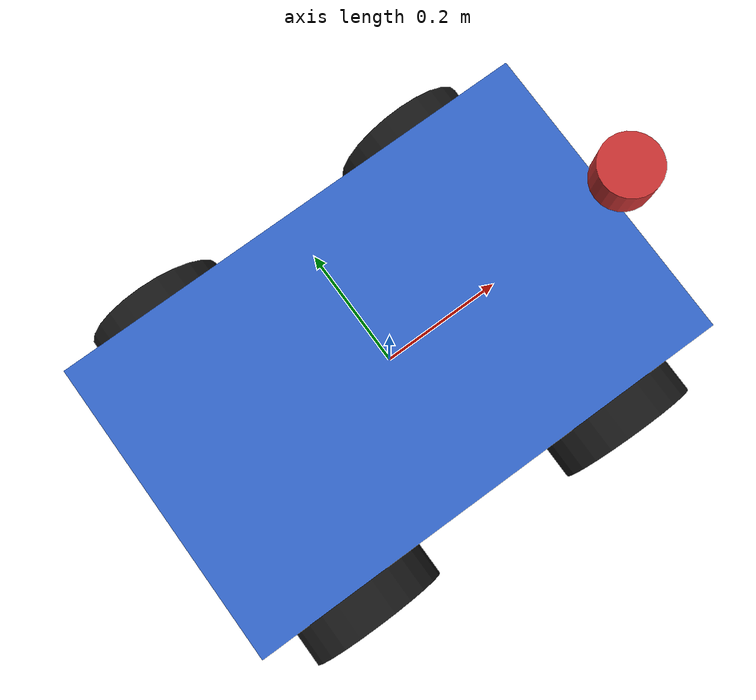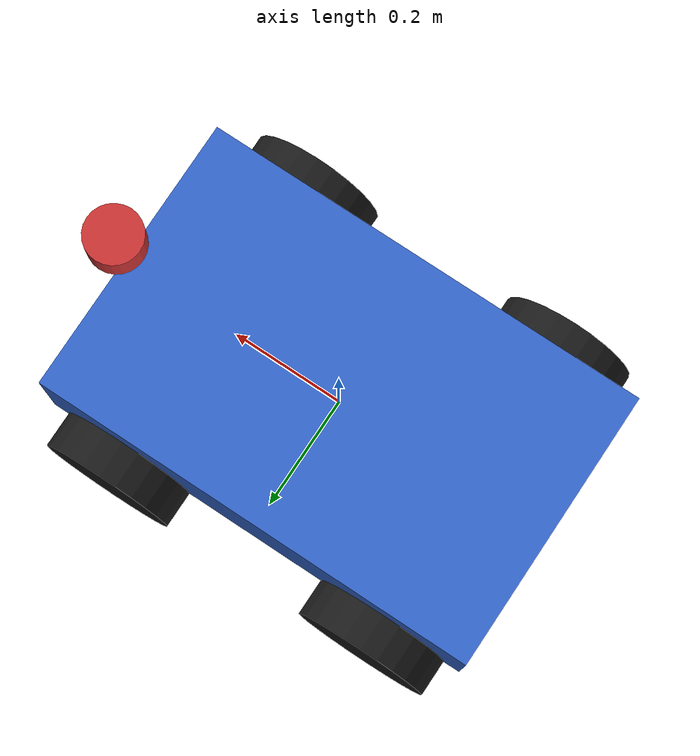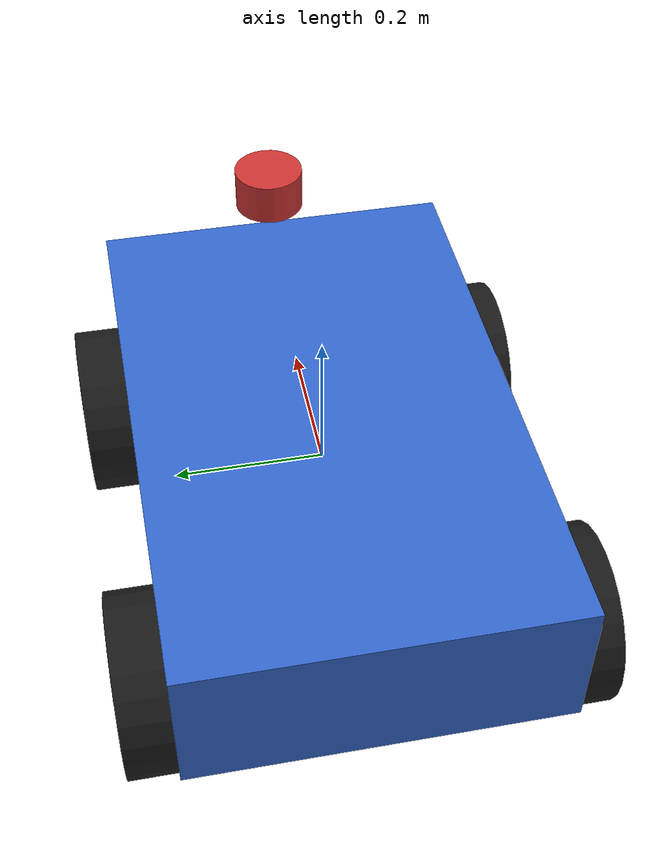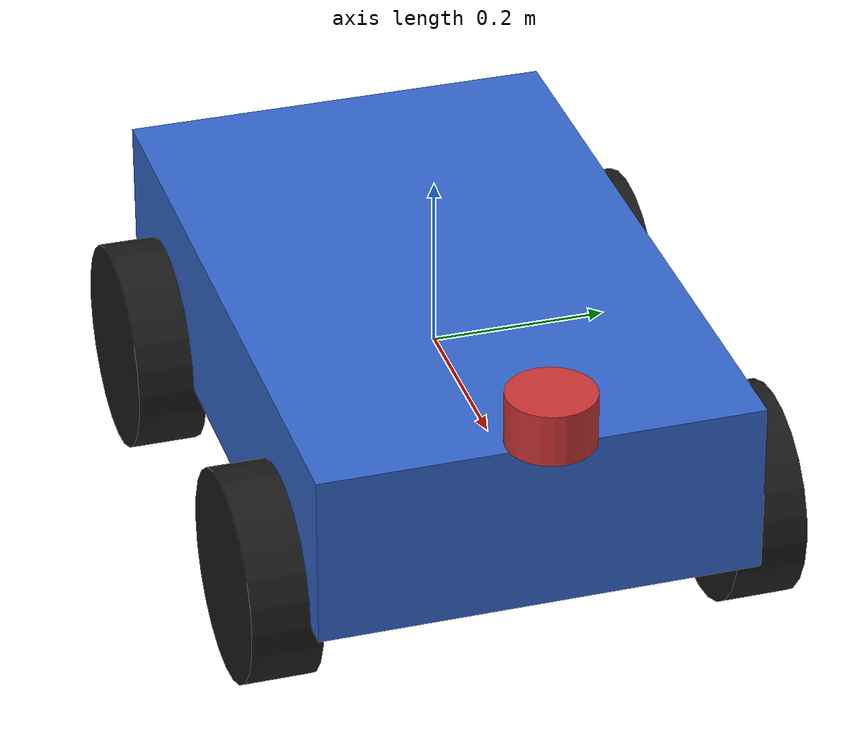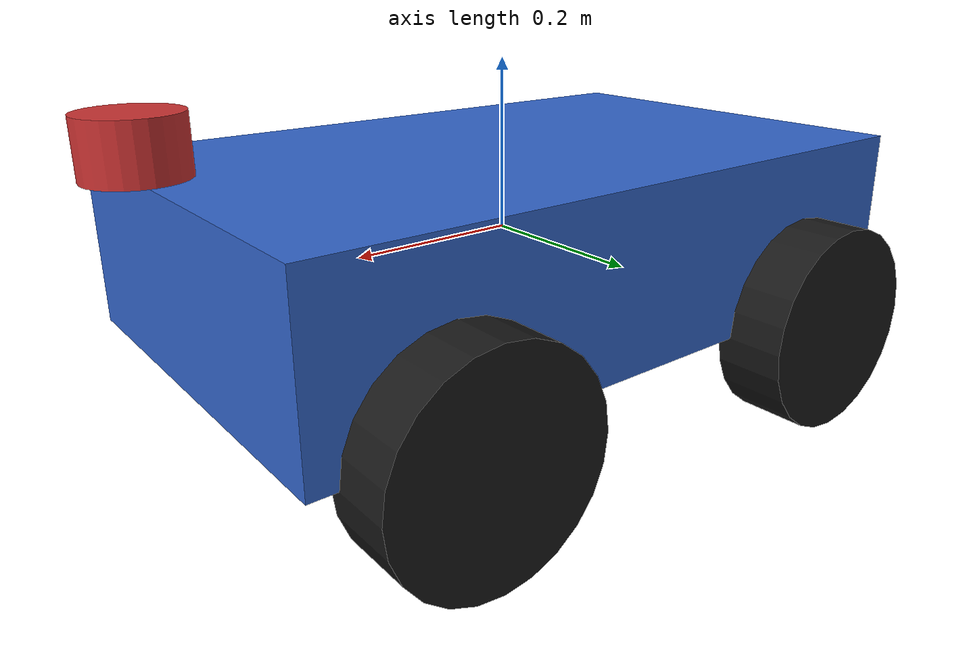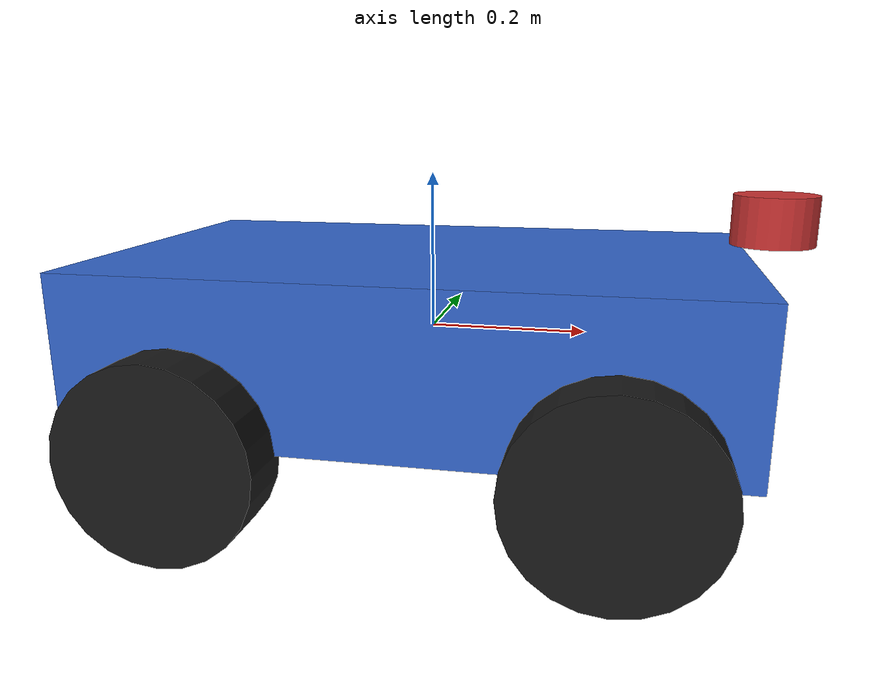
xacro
<?xml version="1.0"?>
<robot xmlns:xacro="http://www.ros.org/wiki/xacro" name="cd2_car">

  <!-- ======================== THAM SỐ ======================== -->
  <xacro:property name="chassis_length" value="0.8"/>
  <xacro:property name="chassis_width" value="0.5"/>
  <xacro:property name="chassis_height" value="0.2"/>
  <xacro:property name="chassis_mass" value="10.0"/>

  <xacro:property name="wheel_radius" value="0.12"/>
  <xacro:property name="wheel_width" value="0.08"/>
  <xacro:property name="wheel_mass" value="1.0"/>

  <xacro:property name="wheel_separation" value="0.55"/>
  <xacro:property name="wheelbase" value="0.5"/>

  <!-- ======================== MATERIALS ======================== -->
  <material name="blue">
    <color rgba="0.2 0.4 0.8 1.0"/>
  </material>
  <material name="black">
    <color rgba="0.1 0.1 0.1 1.0"/>
  </material>
  <material name="red">
    <color rgba="0.8 0.2 0.2 1.0"/>
  </material>

  <!-- ======================== BASE LINK ======================== -->
  <link name="base_link">
    <visual>
      <geometry>
        <box size="${chassis_length} ${chassis_width} ${chassis_height}"/>
      </geometry>
      <material name="blue"/>
    </visual>
    <collision>
      <geometry>
        <box size="${chassis_length} ${chassis_width} ${chassis_height}"/>
      </geometry>
    </collision>
    <inertial>
      <mass value="${chassis_mass}"/>
      <inertia ixx="${chassis_mass*(chassis_width*chassis_width + chassis_height*chassis_height)/12}"
               ixy="0" ixz="0"
               iyy="${chassis_mass*(chassis_length*chassis_length + chassis_height*chassis_height)/12}"
               iyz="0"
               izz="${chassis_mass*(chassis_length*chassis_length + chassis_width*chassis_width)/12}"/>
    </inertial>
  </link>

  <!-- ======================== MACRO BÁNH XE ======================== -->
  <xacro:macro name="wheel" params="name x_offset y_offset">
    <link name="${name}_wheel">
      <visual>
        <geometry>
          <cylinder radius="${wheel_radius}" length="${wheel_width}"/>
        </geometry>
        <material name="black"/>
      </visual>
      <collision>
        <geometry>
          <cylinder radius="${wheel_radius}" length="${wheel_width}"/>
        </geometry>
      </collision>
      <inertial>
        <mass value="${wheel_mass}"/>
        <inertia ixx="${wheel_mass*(3*wheel_radius*wheel_radius + wheel_width*wheel_width)/12}"
                 ixy="0" ixz="0"
                 iyy="${wheel_mass*(3*wheel_radius*wheel_radius + wheel_width*wheel_width)/12}"
                 iyz="0"
                 izz="${wheel_mass*wheel_radius*wheel_radius/2}"/>
      </inertial>
    </link>

    <joint name="${name}_wheel_joint" type="continuous">
      <parent link="base_link"/>
      <child link="${name}_wheel"/>
      <origin xyz="${x_offset} ${y_offset} ${-chassis_height/2}" rpy="${-pi/2} 0 0"/>
      <axis xyz="0 0 1"/>
    </joint>
  </xacro:macro>

  <!-- ======================== 4 BÁNH XE ======================== -->
  <!-- Bánh sau trái (driven) -->
  <xacro:wheel name="rear_left" x_offset="${-wheelbase/2}" y_offset="${wheel_separation/2}"/>
  <!-- Bánh sau phải (driven) -->
  <xacro:wheel name="rear_right" x_offset="${-wheelbase/2}" y_offset="${-wheel_separation/2}"/>
  <!-- Bánh trước trái (caster/passive) -->
  <xacro:wheel name="front_left" x_offset="${wheelbase/2}" y_offset="${wheel_separation/2}"/>
  <!-- Bánh trước phải (caster/passive) -->
  <xacro:wheel name="front_right" x_offset="${wheelbase/2}" y_offset="${-wheel_separation/2}"/>

  <!-- ======================== LIDAR LINK ======================== -->
  <link name="laser_link">
    <visual>
      <geometry>
        <cylinder radius="0.05" length="0.06"/>
      </geometry>
      <material name="red"/>
    </visual>
    <collision>
      <geometry>
        <cylinder radius="0.05" length="0.06"/>
      </geometry>
    </collision>
    <inertial>
      <mass value="0.2"/>
      <inertia ixx="0.0001" ixy="0" ixz="0" iyy="0.0001" iyz="0" izz="0.0001"/>
    </inertial>
  </link>

  <joint name="laser_joint" type="fixed">
    <parent link="base_link"/>
    <child link="laser_link"/>
    <origin xyz="${chassis_length/2 + 0.02} 0 ${chassis_height/2 + 0.05}" rpy="0 0 0"/>
  </joint>

  <!-- ======================== GAZEBO PLUGINS ======================== -->
  <gazebo>
    <!-- DIFF DRIVE PLUGIN - Điều khiển 2 bánh sau -->
    <plugin filename="gz-sim-diff-drive-system" name="gz::sim::systems::DiffDrive">
      <left_joint>rear_left_wheel_joint</left_joint>
      <right_joint>rear_right_wheel_joint</right_joint>
      <wheel_separation>${wheel_separation}</wheel_separation>
      <wheel_radius>${wheel_radius}</wheel_radius>
      <max_linear_acceleration>5.0</max_linear_acceleration>
      <min_linear_acceleration>-5.0</min_linear_acceleration>
      <max_angular_acceleration>4.0</max_angular_acceleration>
      <min_angular_acceleration>-4.0</min_angular_acceleration>
      <!-- QUAN TRỌNG: Topic PHẢI có dấu "/" đầu -->
      <topic>/cmd_vel</topic>
      <odom_topic>/odom</odom_topic>
      <tf_topic>/tf</tf_topic>
      <frame_id>odom</frame_id>
      <child_frame_id>base_link</child_frame_id>
      <odom_publish_frequency>50</odom_publish_frequency>
    </plugin>

    <!-- JOINT STATE PUBLISHER cho các bánh -->
    <plugin filename="gz-sim-joint-state-publisher-system" name="gz::sim::systems::JointStatePublisher">
      <topic>/joint_states</topic>
      <joint_name>rear_left_wheel_joint</joint_name>
      <joint_name>rear_right_wheel_joint</joint_name>
      <joint_name>front_left_wheel_joint</joint_name>
      <joint_name>front_right_wheel_joint</joint_name>
    </plugin>
  </gazebo>

  <!-- ======================== LIDAR SENSOR ======================== -->
  <gazebo reference="laser_link">
    <sensor name="lidar_sensor" type="gpu_lidar">
      <topic>/scan</topic>
      <update_rate>10</update_rate>
      <always_on>true</always_on>
      <visualize>true</visualize>
      <gz_frame_id>laser_link</gz_frame_id>
      <lidar>
        <scan>
          <horizontal>
            <samples>360</samples>
            <resolution>1</resolution>
            <min_angle>-3.14159</min_angle>
            <max_angle>3.14159</max_angle>
          </horizontal>
        </scan>
        <range>
          <min>0.15</min>
          <max>10.0</max>
          <resolution>0.01</resolution>
        </range>
        <noise>
          <type>gaussian</type>
          <mean>0.0</mean>
          <stddev>0.01</stddev>
        </noise>
      </lidar>
    </sensor>
  </gazebo>

</robot>
